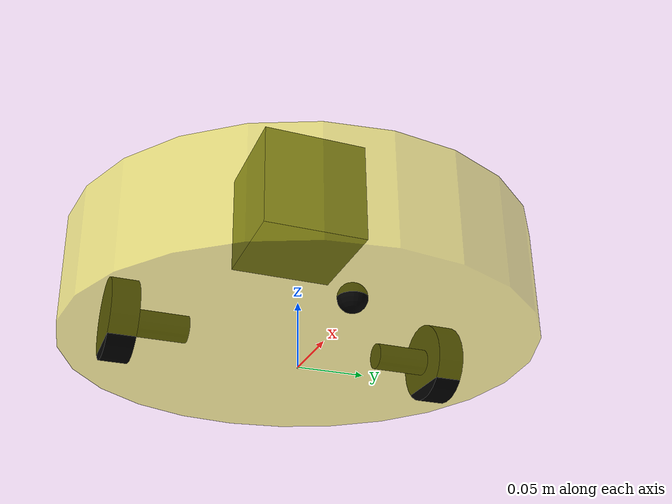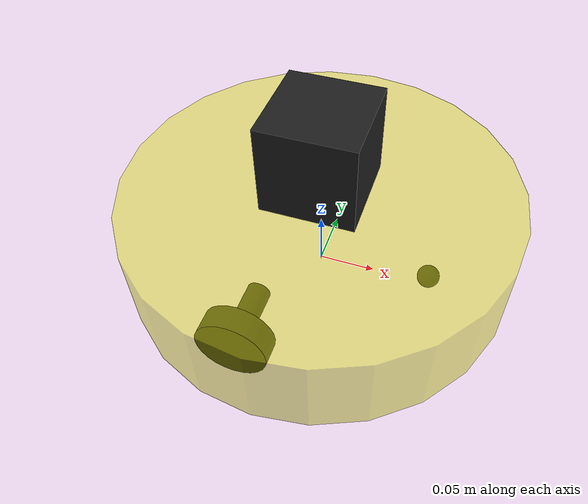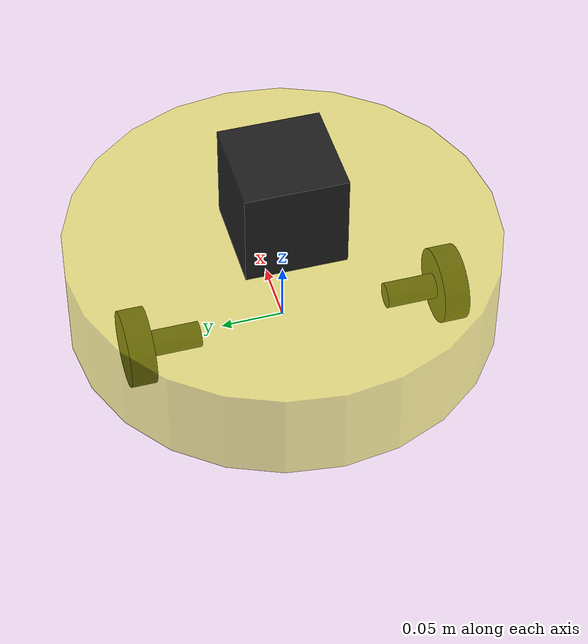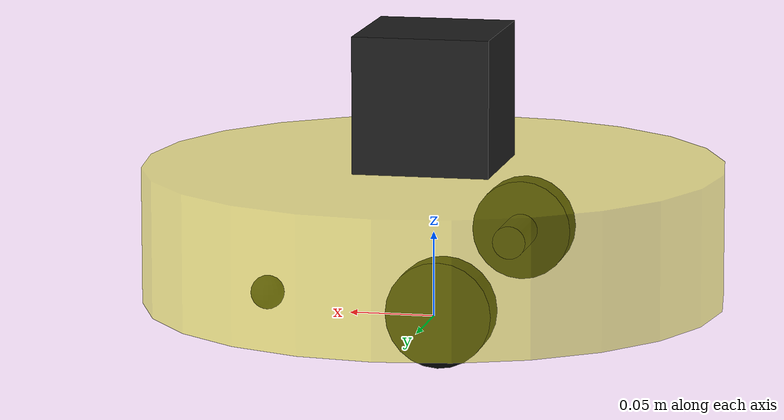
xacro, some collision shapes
<robot name="main" xmlns:xacro="http://wiki.ros.org/xacro">
    <xacro:include filename="inertial.xacro" />
    <xacro:include filename="car.urdf.xacro" />
    <xacro:include filename="laser.urdf.xacro" />
    <!-- 里程计与雷达配置 -->
    <xacro:include filename="move.xacro" />
    <xacro:include filename="laser_config.xacro" />
</robot>

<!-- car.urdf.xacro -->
<robot name="car" xmlns:xacro="http://www.ros.org/wiki/xacro">
    <xacro:property name="PI" value="3.141"/>
    <material name="black">
        <color rgba="0.0 0.0 0.0 1.0" />
    </material>

    <xacro:property name="base_footprint_radius" value="0.001" />
    <!-- 设置 base_footprint  -->
    <link name="base_footprint">
        <visual>
            <geometry>
                <sphere radius="${base_footprint_radius}" />
            </geometry>
        </visual>
    </link>

    <xacro:property name="base_link_radius" value="0.17" /> <!-- base_link 半径 -->
    <xacro:property name="base_link_length" value="0.08" /> <!-- base_link 长 -->
    <xacro:property name="base_link_mass" value="0.2" /> <!-- base_link 质量 -->
    <xacro:property name="earth_space" value="0.01" /> <!-- 离地间距/万向轮半径 -->
    <xacro:property name="caster_link_mass" value="0.05" /><!-- caster_link 质量 -->
    <!-- 添加底盘 -->
    <link name="base_link">
        <visual>
            <geometry>
                <cylinder radius="${base_link_radius}" length="${base_link_length}" />
            </geometry>
            <origin xyz="0 0 0" rpy="0 0 0" />
            <material name="yellow">
                <color rgba="0.9 0.9 0.1 0.5" />
            </material>
        </visual>
        <collision>
            <geometry>
                <cylinder radius="${base_link_radius}" length="${base_link_length}" />
            </geometry>
            <origin xyz="0 0 0" rpy="0 0 0" />
        </collision>
        <xacro:cylinder_inertial_matrix m="${base_link_mass}" r="${base_link_radius}" h="${base_link_length}" />
    </link>
    <gazebo reference="base_link">
        <material>Gazebo/Yellow</material>
    </gazebo>

     <!-- 添加关节 脚点-底盘 -->
    <joint name="base2footprint" type="fixed">
        <parent link="base_footprint" />
        <child link="base_link"/>
        <origin xyz="0 0 ${earth_space + base_link_length / 2 }" />
    </joint>

    <!-- 添加万向轮 -->
    <link name="caster_link">
        <visual>
            <geometry>
                <sphere radius="${earth_space}" />
            </geometry>
            <origin xyz="0 0 0" rpy="0 0 0" />
            <material name="black"/>
        </visual>
        <collision>
            <geometry>
                <sphere radius="${earth_space}" />
            </geometry>
            <origin xyz="0 0 0" rpy="0 0 0" />
        </collision>
        <xacro:sphere_inertial_matrix m="${caster_link_mass}" r="${earth_space}" />
    </link>
    <gazebo reference="caster_link">
        <material>Gazebo/Black</material>
    </gazebo>

    <!-- 添加关节 万向轮-底盘 -->
    <joint name="caster2base" type="continuous">
        <parent link="base_link" />
        <child link="caster_link"/>
        <origin xyz="0.1 0 ${base_link_length / -2}" />
        <axis xyz="1 1 1" />
    </joint>

    <!-- 添加驱动电机、驱动轮及其关节 -->
    <!-- 驱动电机、驱动轮属性 -->
    <xacro:property name="motor_radius" value="0.01" /><!-- 半径 -->
    <xacro:property name="motor_length" value="0.05" /><!-- 宽度 -->
    <xacro:property name="motor_mass" value="0.1" /><!-- wheel 质量 -->
    <xacro:property name="wheel_radius" value="0.03" /><!-- 半径 -->
    <xacro:property name="wheel_length" value="0.02" /><!-- 宽度 -->
    <xacro:property name="wheel_mass" value="0.05" /><!-- wheel 质量 -->
    <!-- 驱动电机、驱动轮宏实现 -->
    <xacro:macro name="add_wheels" params="name flag">
        <!-- 添加驱动电机 -->
        <link name="${name}_motor">
            <visual>
                <geometry>
                    <cylinder radius="${motor_radius}" length="${motor_length}" />
                </geometry>
                <origin xyz="0 0 0" rpy="${PI / 2} 0 0" />
                <material name="black"/>
            </visual>
            <collision>
                <geometry>
                    <cylinder radius="${motor_radius}" length="${motor_length}" />
                </geometry>
                <origin xyz="0 0 0" rpy="${PI / 2} 0 0" />
            </collision>
            <xacro:cylinder_inertial_matrix m="${motor_mass}" r="${motor_radius}" h="${motor_length}" />
        </link>
        <gazebo reference="${name}_motor">
            <material>Gazebo/Black</material>
        </gazebo>

        <!-- 添加关节 驱动电机-底盘 -->
        <joint name="${name}_motor2base" type="fixed">
            <parent link="base_link" />
            <child link="${name}_motor" />
            <origin xyz="-0.03 ${0.1*flag} -0.02" />
        </joint>

        <!-- 添加驱动轮 -->
        <link name="${name}_wheel">
            <visual>
                <geometry>
                    <cylinder radius="${wheel_radius}" length="${wheel_length}" />
                </geometry>
                <origin xyz="0 0 0" rpy="${PI / 2} 0 0" />
                <material name="black"/>
            </visual>
            <collision>
                <geometry>
                    <cylinder radius="${wheel_radius}" length="${wheel_length}" />
                </geometry>
                <origin xyz="0 0 0" rpy="${PI / 2} 0 0" />
            </collision>
            <xacro:cylinder_inertial_matrix m="${wheel_mass}" r="${wheel_radius}" h="${wheel_length}" />
        </link>
        <gazebo reference="${name}_wheel">
            <material>Gazebo/Orange</material>
        </gazebo>

        <!-- 添加关节 驱动轮-驱动电机 -->
        <joint name="${name}_wheel2motor" type="continuous">
            <parent link="${name}_motor" />
            <child link="${name}_wheel" />
            <origin xyz="0 ${0.025*flag} 0" />
            <axis xyz="0 1 0" />
        </joint>
    </xacro:macro>

    <xacro:add_wheels name="lf" flag="1" />
    <xacro:add_wheels name="rt" flag="-1" />
</robot>

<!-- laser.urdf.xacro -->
<robot name="my_laser" xmlns:xacro="http://wiki.ros.org/xacro">
    <!-- 雷达属性 -->
    <xacro:property name="laser_length" value="0.08" /> <!-- 雷达长度 -->
    <xacro:property name="laser_z" value="${base_link_length / 2 + laser_length / 2}" /> <!-- 雷达安装的z坐标  -->
    <xacro:property name="laser_mass" value="0.2" /> <!-- 雷达质量 -->

    <!-- 雷达关节以及link -->
    <link name="laser">
        <visual>
            <geometry>
                <mesh filename="package://gazebo_test/mesh/rplidar.dae" />
            </geometry>
            <origin xyz="0.0 0.0 0.0" rpy="0.0 0.0 0.0" />
        </visual>
        <collision>
            <geometry>
                <box size="${laser_length} ${laser_length} ${laser_length}" />
            </geometry>
            <origin xyz="0.0 0.0 0.0" rpy="0.0 0.0 0.0" />
        </collision>
        <xacro:Box_inertial_matrix m="${laser_mass}" l="${laser_length}" w="${laser_length}" h="${laser_length}" />
    </link>

    <joint name="laser2base" type="fixed">
        <parent link="base_link" />
        <child link="laser" />
        <origin xyz="0 0 ${laser_z}" />
    </joint>
    <gazebo reference="laser">
        <material>Gazebo/Black</material>
    </gazebo>
</robot>
